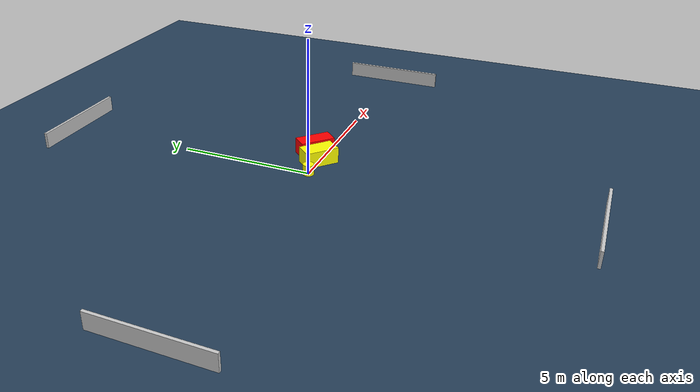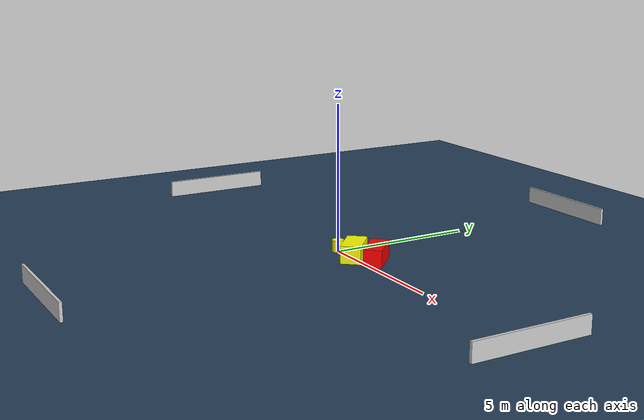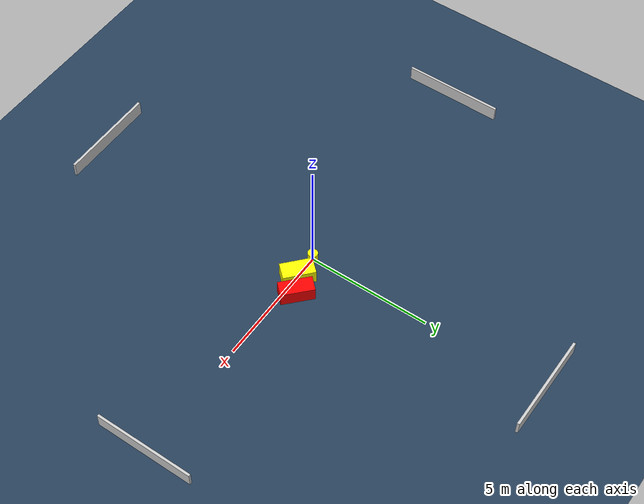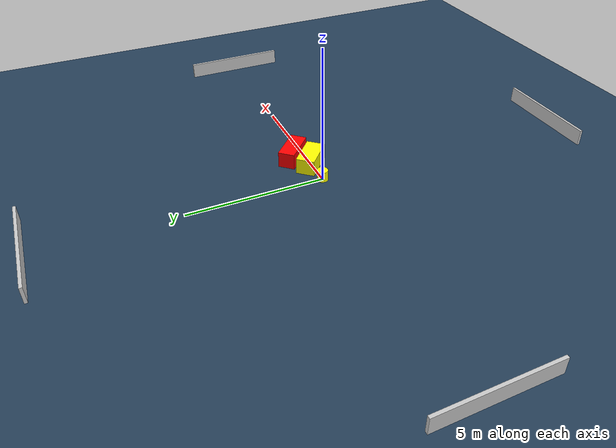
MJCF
<?xml version="1.0" ?>
<mujoco model="generated_environment">
  <option timestep="0.01" integrator="RK4" cone="elliptic"/>
  <default>
    <geom density="1"/>
  </default>
  <asset>
    <texture builtin="gradient" height="3072" name="skybox" rgb1="0.3 0.5 0.7" rgb2="0 0 0" type="skybox" width="512"/>
    <texture builtin="checker" height="300" name="groundplane" rgb1="0.2 0.3 0.4" rgb2="0.1 0.2 0.3" type="2d" width="300"/>
    <material name="groundplane" reflectance="0.2" texrepeat="5 5" texture="groundplane"/>
  </asset>
  <worldbody>
    <light dir="0 0 -1" directional="true" pos="0 0 1.5"/>
    <geom condim="3" friction="0.5 0.005 0.001" material="groundplane" name="floor" pos="0 0 0" size="0 0 0.05" type="plane"/>
    <body name="walls">
      <geom name="wall_1" condim="4" pos="-10.0 0.0 0.3" rgba="0.800000011920929 0.800000011920929 0.800000011920929 1.0" size="0.05 2.0 0.3" type="box"/>
      <geom name="wall_2" condim="4" pos="10.0 0.0 0.3" rgba="0.800000011920929 0.800000011920929 0.800000011920929 1.0" size="0.05 2.0 0.3" type="box"/>
      <geom name="wall_3" condim="4" pos="0.0 -10.0 0.3" rgba="0.800000011920929 0.800000011920929 0.800000011920929 1.0" size="2.0 0.05 0.3" type="box"/>
      <geom name="wall_4" condim="4" pos="0.0 10.0 0.3" rgba="0.800000011920929 0.800000011920929 0.800000011920929 1.0" size="2.0 0.05 0.3" type="box"/>
    </body>
    <body name="robot">
      <joint name="joint_x" type="slide" pos="0 0 0" axis="1 0 0"/>
      <joint name="joint_y" type="slide" pos="0 0 0" axis="0 1 0"/>
      <geom name="robot" type="cylinder" pos="0.0 0.0 0.2" size="0.2 0.2 0.0" mass="5.0" friction="1.0 0.005 0.0001" condim="4" rgba="1.0 1.0 0.0 1.0"/>
    </body>
    <body name="obstacle_1_movable">
      <geom name="obstacle_1_movable" condim="4" pos="1.003557511824919 0.022208430522725836 0.3" euler="0 0 138.15061897616573" friction="0.0 0.005 0.001" rgba="1.0 1.0 0.0 1.0" size="0.63789944118513 0.34243767622584553 0.3" type="box" mass="0.1"/>
      <joint type="free"/>
    </body>
    <body name="obstacle_2_static">
      <geom name="obstacle_2_static" condim="4" pos="1.6908664027128961 0.4516875591395087 0.3" euler="0 0 47.01425231678036" friction="0.0 0.005 0.001" rgba="1.0 0.0 0.0 1.0" size="0.30576340576948713 0.6604261996848924 0.3" type="box"/>
    </body>
  </worldbody>
  <actuator>
    <motor name="actuator_x" joint="joint_x" gear="1" ctrlrange="-1 1"/>
    <motor name="actuator_y" joint="joint_y" gear="1" ctrlrange="-1 1"/>
  </actuator>
</mujoco>
